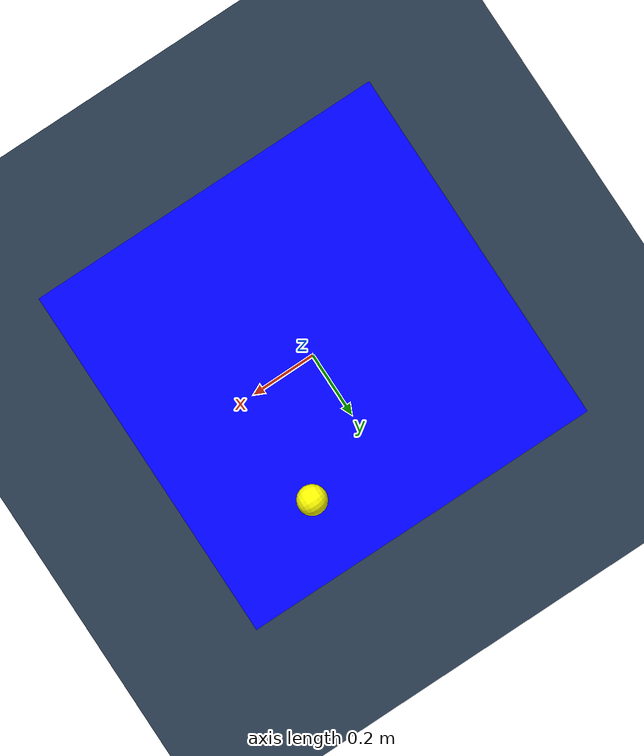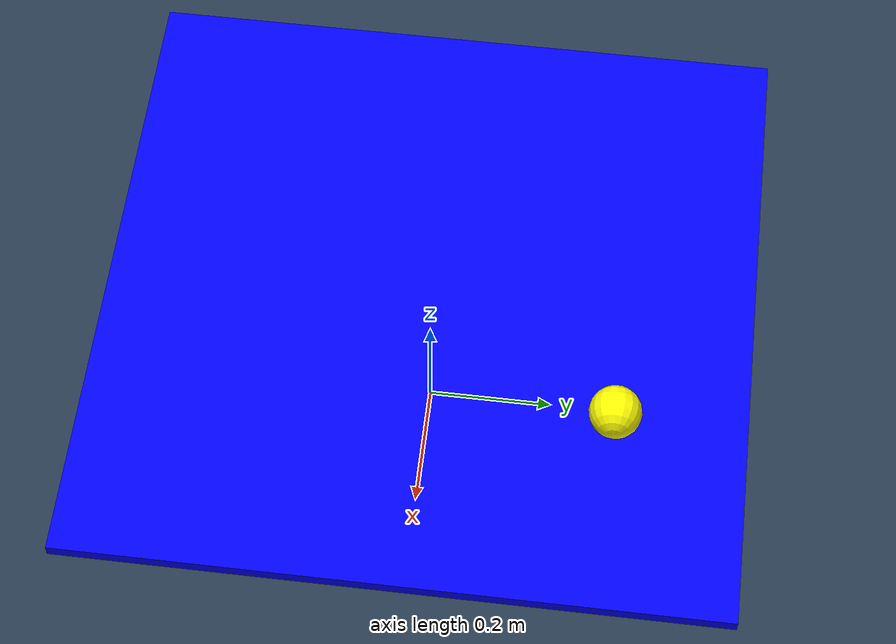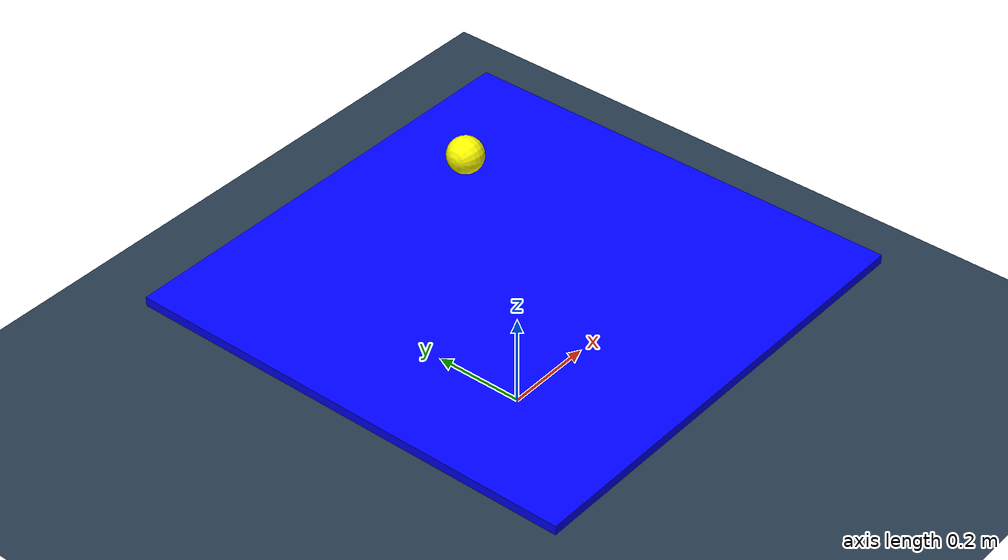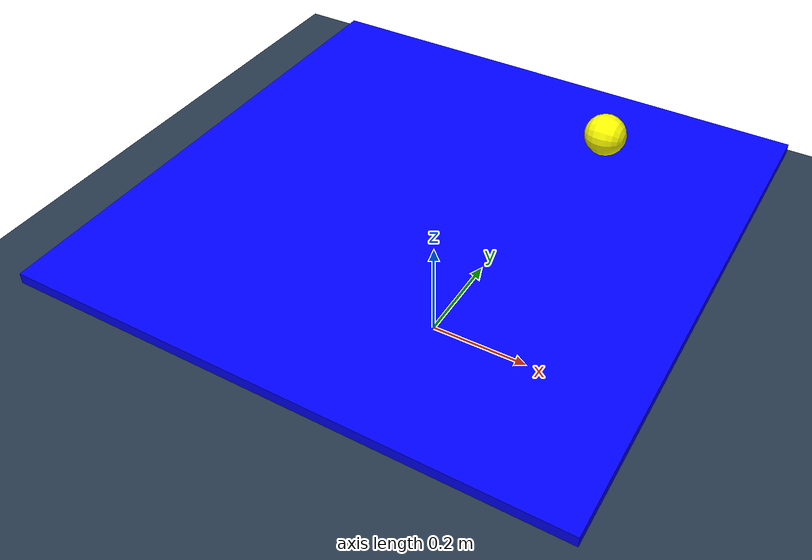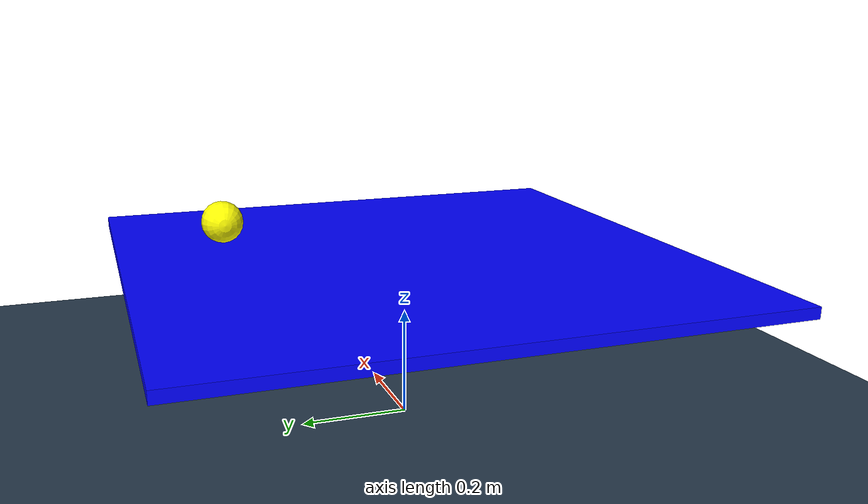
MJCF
<mujoco model="dual-panda v01">
    <include file="panda/assets/assets.xml" />
    <asset>
        <texture name="texplane" type="2d" builtin="checker" rgb1=".2 .3 .4" rgb2=".1 0.15 0.2"
                width="512" height="512"/>
        <material name="MatGnd" reflectance="0.5" texture="texplane" texrepeat="1 1" texuniform="true"/>
    </asset>
    <!-- change this for different objects -->

    <include file="panda/assets/tray.xml" />

<compiler meshdir="" />

    <option noslip_iterations="50" />
    <option solver="Newton" iterations="100" tolerance="1e-5"/>

    <option cone="elliptic"> </option>
    <option><flag multiccd="enable"/> </option>
    <worldbody>
        <light directional="false" diffuse=".8 .8 .8" specular="0.3 0.3 0.3" pos="1  1 3" dir="-1 -1 -3"/>
        <light directional="false" diffuse=".8 .8 .8" specular="0.3 0.3 0.3" pos="1 -1 3" dir="-1 1 -3"/>
        <light directional="false" diffuse=".8 .8 .8" specular="0.3 0.3 0.3" pos="-1 0 3" dir="1 0 -3" />
        <geom name="ground" pos="0 0 0" size="5 5 10" material="MatGnd" type="plane" contype="1" conaffinity="1"/>

        <body name="collision_object" pos="0.0 0 0.3" quat="1 0 0 0">
            <joint type="hinge" name="object_virtual_joint" pos="0.0 0.0 0.0" axis="1 0 0" damping="1" />
            <joint type="hinge" name="object_virtual_joint_y" pos="0.0 0.0 0.0" axis="0 1 0" damping="1" />
            <geom type="box" size="0.5 0.5 0.01" rgba="0 0 1 1 " friction="0.1 0.1 0.1"  condim="6" />
            <inertial pos="0 0 0" mass="2" diaginertia="0.03013 0.08413 0.11333" />
        </body>

        <body name="cylinder_body" pos=".2 0.3 0.35" quat="0 0.7071068 0 0.7071068">

            <joint type="free" />

            <geom type="sphere" size="0.04 0.04 0.04" rgba="1 1 0 1" friction="0.1 0.1 0.1"  condim="6"/>
            <inertial pos="0 0 0" mass="1" diaginertia="0.024 0.024 0.0136"/>
        </body>

    </worldbody>

    <actuator>
        <position ctrllimited="true" ctrlrange="-2 2" joint="object_virtual_joint" kp="10"/>
        <position ctrllimited="true" ctrlrange="-2 2" joint="object_virtual_joint_y" kp="10"/>
    </actuator>
</mujoco>

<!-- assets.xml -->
<mujocoinclude>
    <compiler angle="radian" />
    <option noslip_iterations="20"/>
    <option timestep="0.002"/>
    <size nuser_actuator="5"/>
    <option integrator="implicit"/>
    <asset>
        <mesh name="link0_col" file="./panda/meshes/collision/link0.stl"/>
        <mesh name="link1_col" file="./panda/meshes/collision/link1.stl"/>
        <mesh name="link2_col" file="./panda/meshes/collision/link2.stl"/>
        <mesh name="link3_col" file="./panda/meshes/collision/link3.stl"/>
        <mesh name="link4_col" file="./panda/meshes/collision/link4.stl"/>
        <mesh name="link5_col" file="./panda/meshes/collision/link5.stl"/>
        <mesh name="link6_col" file="./panda/meshes/collision/link6.stl"/>
        <mesh name="link7_col" file="./panda/meshes/collision/link7.stl"/>
        <mesh name="hand_col" file="./panda/meshes/collision/hand.stl"/>
        <mesh name="link0_viz" file="./panda/meshes/visual/link0.stl"/>
        <mesh name="link1_viz" file="./panda/meshes/visual/link1.stl"/>
        <mesh name="link2_viz" file="./panda/meshes/visual/link2.stl"/>
        <mesh name="link3_viz" file="./panda/meshes/visual/link3.stl"/>
        <mesh name="link3_dark_viz" file="./panda/meshes/visual/link3_dark.stl" scale="1.01 1.01 1.01"/>
        <mesh name="link4_viz" file="./panda/meshes/visual/link4.stl"/>
        <mesh name="link4_dark_viz" file="./panda/meshes/visual/link4_dark.stl" scale="1.01 1.01 1.01"/>
        <mesh name="link5_viz" file="./panda/meshes/visual/link5.stl"/>
        <mesh name="link5_dark_viz" file="./panda/meshes/visual/link5_dark.stl" scale="1.01 1.01 1.01"/>
        <mesh name="link6_viz" file="./panda/meshes/visual/link6.stl"/>
        <mesh name="link6_dark_viz" file="./panda/meshes/visual/link6_dark.stl" scale="1.01 1.01 1.01"/>
        <mesh name="link7_viz" file="./panda/meshes/visual/link7.stl"/>
        <mesh name="link7_dark_viz" file="./panda/meshes/visual/link7_dark.stl" scale="1.01 1.01 1.01"/>
        <mesh name="hand_viz" file="./panda/meshes/visual/hand.stl"/>
    </asset>

    <default>
        <default class = "object">
            <default class="object_viz">
                <geom contype="0" conaffinity="0" group="0" type="mesh" rgba=".92 .92 .95 1"/>
            </default>
            <default class="object_col">
                <geom contype="1" conaffinity="1" group="3" type="mesh" rgba=".5 .6 .7 1"/>
            </default>
        </default>
    </default>

    <default>
        <default class="panda">
            <joint pos="0 0 0" axis="0 0 1" limited="true"/>
            <default class="panda_viz">
                <geom contype="0" conaffinity="0" group="0" type="mesh" rgba=".92 .92 .95 1"/>
            </default>
            <default class="panda_grey_viz">
                <geom contype="0" conaffinity="0" group="0" type="mesh" rgba=".4 .4 .4 1"/>
            </default>

            <default class="panda_col">
                <geom contype="1" conaffinity="1" group="3" type="mesh" rgba=".5 .6 .7 1"/>
            </default>
            <default class="panda_arm">
                <joint damping="100"/>
            </default>
             <default class="panda_forearm">
                <joint damping="10"/>
            </default>
             <default class="panda_finger">
                <joint damping="10" armature='5'/>
                <geom friction="10 10 10" user="0" rgba="0.5 0.6 0.7 .4" contype="1" conaffinity="0" condim="6" group="3" />
                <position user="1002 40 2001 -0.0001 0.0001"/>
            </default>
        </default>
    </default>
</mujocoinclude>

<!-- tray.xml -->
<mujocoinclude>
    <asset>
        <mesh name="tray_viz" file="./panda/meshes/visual/objects/tray.stl" scale="0.4 0.2 0.2" />
        <mesh name="trayPart-0"
            file="./panda/meshes/collision/objects/decompositions/tray/trayPart-0.stl"
            scale="0.4 0.2 0.2" />
        <mesh name="trayPart-1"
            file="./panda/meshes/collision/objects/decompositions/tray/trayPart-1.stl"
            scale="0.2 0.2 0.2" />
        <mesh name="trayPart-2"
            file="./panda/meshes/collision/objects/decompositions/tray/trayPart-2.stl"
            scale="0.2 0.2 0.2" />
    </asset>
</mujocoinclude>
